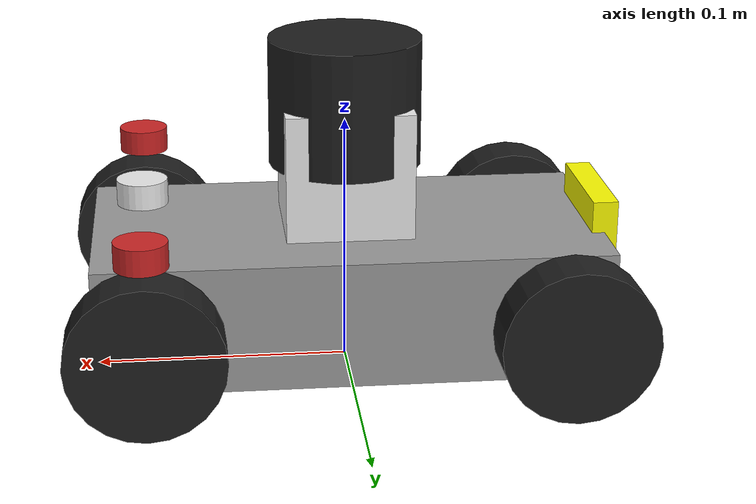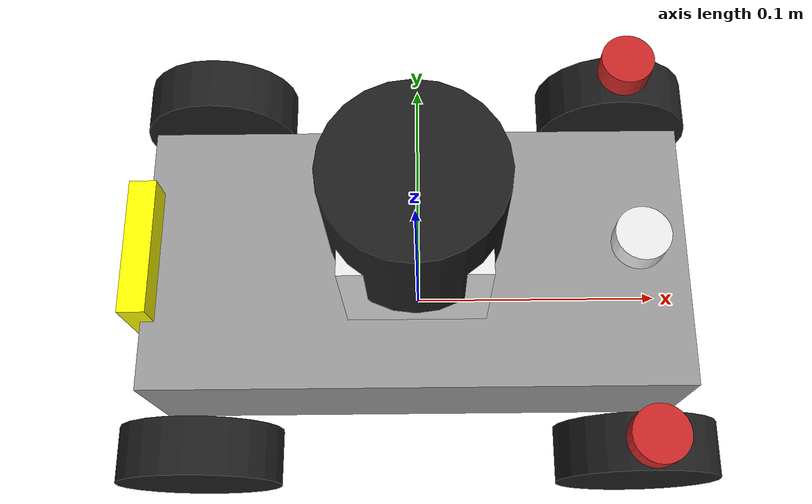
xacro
<!-- 组合小车底盘与摄像头 -->
<robot name="my_car_camera" xmlns:xacro="http://wiki.ros.org/xacro">
    <xacro:include filename="ackermann.urdf.xacro" />
    <xacro:include filename="ackermann_gazebo.urdf.xacro" />
    <xacro:include filename="laser_gazebo.urdf.xacro" />
    <xacro:include filename="laser.urdf.xacro" />
    <xacro:include filename="imu.urdf.xacro" />
</robot>

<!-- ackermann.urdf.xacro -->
<robot name="racebot" xmlns:xacro="http://wiki.ros.org/xacro">
  <!-- Include xacro for inertials, materials and wheels -->
  <xacro:include filename="$(find nav2_bringup)/ackermann_model/steer_base/wheel.xacro" />

  <xacro:property name="M_PI" value="3.1415926535897931" />
  <xacro:arg name="lidar_visual" default="true" />

  <!-- Math constants -->
  <xacro:property name="deg_to_rad" value="0.01745329251994329577" />

  <!-- Robot base dimensions -->
  <xacro:property name="base_length" value="0.2" />
  <xacro:property name="base_width" value="0.1" />
  <xacro:property name="base_height" value="0.05" />
  <xacro:property name="base_mass" value="300" />

  <!-- Wheel link dimensions -->
  <xacro:property name="wheel_radius" value="0.03" />
  <xacro:property name="wheel_thickness" value="0.02" />
  <xacro:property name="wheel_mass" value="30.0" />

  <!-- Steering link dimensions -->
  <xacro:property name="steer_radius" value="0.01" />
  <xacro:property name="steer_thickness" value="0.01" />
  <xacro:property name="steer_mass" value="15" />

  <!-- Axle positions -->
  <xacro:property name="axle_offset" value="0.02" />
  <xacro:property name="steer_offset" value="0.01" />

  <link name="base_footprint" />
  <joint name="base_joint" type="fixed">
    <parent link="base_footprint" />
    <child link="base_link" />
    <origin xyz="0 0 ${base_height/1.5}" rpy="0 0 0" />
  </joint>

  <!-- Base link -->
  <link name="base_link">
    <visual>
      <origin xyz="0 0 0" rpy="0 0 0" />
      <geometry>
        <box size="${base_length} ${base_width} ${base_height}" />
      </geometry>
      <material name="gray" />
    </visual>
    <collision>
      <origin xyz="0 0 0" rpy="0 0 0" />
      <geometry>
        <box size="${base_length/2} ${base_width/2} ${base_height/2}" />
      </geometry>
    </collision>
    <xacro:solid_cuboid_inertial rpy="0 0 0" xyz="0 0 0" mass="${base_mass}" x="${base_length}"
      y="${base_width}" z="${base_height}" />
  </link>

  <!-- Front steer and rear wheel joints required for ackermann_steering_controller -->
  <xacro:front_steer name="front" parent="base" steer_radius="${steer_radius}"
    steer_thickness="${steer_thickness}"
    steer_mass="${steer_mass}" base_length="${base_length}" base_width="${base_width}"
    axle_offset="${axle_offset}"
    steer_height="${wheel_radius+steer_offset}"></xacro:front_steer>

  <!-- Rear Link -->
  <xacro:rear_wheel name="rear" parent="base" wheel_radius="${wheel_radius/4}"
    wheel_thickness="${wheel_thickness/2}" wheel_mass="${wheel_mass/32}">
    <origin xyz="${-base_length/2+axle_offset} 0 0" rpy="${-90 * deg_to_rad} 0 0" />
  </xacro:rear_wheel>

  <!-- Steerable front wheels -->
  <xacro:front_wheel_lr name="front_right" parent="base" reflect="-1" wheel_radius="${wheel_radius}"
    wheel_thickness="${wheel_thickness}"
    wheel_mass="${wheel_mass}" steer_radius="${steer_radius}" steer_thickness="${steer_thickness}"
    steer_mass="${steer_mass}"
    base_length="${base_length}" base_width="${base_width}" axle_offset="${axle_offset}"
    steer_height="${wheel_radius+steer_offset}"></xacro:front_wheel_lr>

  <xacro:front_wheel_lr name="front_left" parent="base" reflect="1" wheel_radius="${wheel_radius}"
    wheel_thickness="${wheel_thickness}"
    wheel_mass="${wheel_mass}" steer_radius="${steer_radius}" steer_thickness="${steer_thickness}"
    steer_mass="${steer_mass}"
    base_length="${base_length}" base_width="${base_width}" axle_offset="${axle_offset}"
    steer_height="${wheel_radius+steer_offset}"></xacro:front_wheel_lr>

  <!-- Rear wheels -->
  <xacro:rear_wheel_lr name="rear_right" parent="base" wheel_radius="${wheel_radius}"
    wheel_thickness="${wheel_thickness}" wheel_mass="${wheel_mass}">
    <origin xyz="${-base_length/2+axle_offset} ${-base_width/2-axle_offset} 0"
      rpy="${-90 * deg_to_rad} 0 0" />
  </xacro:rear_wheel_lr>

  <xacro:rear_wheel_lr name="rear_left" parent="base" wheel_radius="${wheel_radius}"
    wheel_thickness="${wheel_thickness}" wheel_mass="${wheel_mass}">
    <origin xyz="${-base_length/2+axle_offset} ${+base_width/2+axle_offset} 0"
      rpy="${-90 * deg_to_rad} 0 0" />
  </xacro:rear_wheel_lr>

  <!-- Colour -->
  <gazebo reference="base_link">
    <material>Gazebo/Residential</material>
  </gazebo>

  <!-- 虚拟方向盘 -->
  <!-- Virtual Steering wheel -->
  <link name="virtual_steer_link">
    <visual>
      <origin xyz="0.0 0.0 0.0" rpy="0.0 0.0 0.0" />
      <geometry>
        <box size="0.01 0.05 0.075" />
      </geometry>
      <material name="">
        <color rgba="1.0 1.0 0.0 1" />
      </material>
    </visual>
    <inertial>
      <origin xyz="0.0 0.0 0.0" rpy="0.0 0.0 0.0" />
      <mass value="0.001" />
      <inertia ixx="0.0" ixy="0.0" ixz="0.0" iyy="0.0" iyz="0.0" izz="0.0" />
    </inertial>
  </link>
  <joint name="virtual_steering_wheel_joint" type="revolute">
    <origin xyz="${-base_length/2} 0.0 0.0" rpy="0.0 0.0 0.0" />
    <parent link="base_link" />
    <child link="virtual_steer_link" />
    <axis xyz="-1 0 0" />
    <limit lower="-3" upper="3" effort="200" velocity="20" />
  </joint>

</robot>

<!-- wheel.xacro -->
<robot name="wheel" xmlns:xacro="http://wiki.ros.org/xacro">
  <!-- Include xacro for materials and inertials -->
  <xacro:include filename="$(find nav2_bringup)/ackermann_model/steer_base/materials.xacro" />
  <xacro:include filename="$(find nav2_bringup)/ackermann_model/steer_base/inertials.xacro" />

  <!-- Properties -->
  <xacro:property name="steer_effort" value="10.0" />
  <xacro:property name="steer_velocity" value="10.0" />
  <xacro:property name="steer_limit_deg" value="45.0" />
  <xacro:property name="deg_to_rad" value="0.01745329251994329577" />

  <!-- Bicycle model front steering link (required for steer_drive_controller) -->
  <xacro:macro name="front_steer"
    params="
      name
      parent
      steer_radius
      steer_thickness
      steer_mass
      base_length
      base_width
      axle_offset
      steer_height">
    <link name="${name}_steer_link">
      <visual>
        <origin xyz="0 0 0" rpy="0 0 0" />
        <geometry>
          <cylinder radius="${steer_radius}" length="${steer_thickness}" />
        </geometry>
        <material name="white" />
      </visual>
      <collision>
        <origin xyz="0 0 0" rpy="0 0 0" />
        <geometry>
          <cylinder radius="${steer_radius}" length="${steer_thickness}" />
        </geometry>
      </collision>
      <xacro:solid_cylinder_inertial
        rpy="0 0 0" xyz="0 0 0"
        mass="${steer_mass}"
        radius="${steer_radius}" length="${steer_thickness}" />
    </link>

    <joint name="${name}_steer_joint" type="revolute">
      <parent link="${parent}_link" />
      <child link="${name}_steer_link" />
      <origin xyz="${base_length/2-axle_offset} 0 ${steer_height}" rpy="0 0 0" />
      <axis xyz="0 0 1" />
      <limit effort="${steer_effort}"
        lower="${-180.0 * deg_to_rad}" upper="${180.0 * deg_to_rad}"
        velocity="${steer_velocity}" />
    </joint>

    <transmission name="${name}_steer_joint_trans">
      <type>transmission_interface/SimpleTransmission</type>
      <actuator name="${name}_steer_joint_motor">
        <mechanicalReduction>1</mechanicalReduction>
        <hardwareInterface>hardware_interface/PositionJointInterface</hardwareInterface>
      </actuator>
      <joint name="${name}_steer_joint">
        <hardwareInterface>hardware_interface/PositionJointInterface</hardwareInterface>
      </joint>
    </transmission>

    <gazebo reference="${name}_steer_link">
      <material>Gazebo/White</material>
    </gazebo>
  </xacro:macro>

  <!-- Car steering model front (steerable) wheel links (left/right) -->
  <xacro:macro name="front_wheel_lr"
    params="
      name
      parent
      reflect
      wheel_radius
      wheel_thickness
      wheel_mass
      steer_radius
      steer_thickness
      steer_mass
      base_length
      base_width
      axle_offset
      steer_height">
    <link name="${name}_steer_link">
      <visual>
        <origin xyz="0 0 0" rpy="0 0 0" />
        <geometry>
          <cylinder radius="${steer_radius}" length="${steer_thickness}" />
        </geometry>
        <material name="red" />
      </visual>
      <collision>
        <origin xyz="0 0 0" rpy="0 0 0" />
        <geometry>
          <cylinder radius="${steer_radius}" length="${steer_thickness}" />
        </geometry>
      </collision>
      <xacro:solid_cylinder_inertial
        rpy="0 0 0" xyz="0 0 0"
        mass="${steer_mass}"
        radius="${steer_radius}" length="${steer_thickness}" />
    </link>

    <joint name="${name}_steer_joint" type="revolute">
      <parent link="${parent}_link" />
      <child link="${name}_steer_link" />
      <origin
        xyz="${base_length/2-axle_offset} ${reflect*(base_width/2+axle_offset)} ${steer_height}"
        rpy="0 0 0" />
      <axis xyz="0 0 1" />
      <limit effort="${steer_effort}"
        lower="${steer_limit_deg * deg_to_rad * -1.0}" upper="${steer_limit_deg * deg_to_rad}"
        velocity="${steer_velocity}" />
    </joint>

    <link name="${name}_wheel_link">
      <visual>
        <origin xyz="0 0 0" rpy="0 0 0" />
        <geometry>
          <cylinder radius="${wheel_radius}" length="${wheel_thickness}" />
        </geometry>
        <material name="black" />
      </visual>
      <collision>
        <origin xyz="0 0 0" rpy="0 0 0" />
        <geometry>
          <cylinder radius="${wheel_radius}" length="${wheel_thickness}" />
        </geometry>
      </collision>
      <xacro:solid_cylinder_inertial
        rpy="0 0 0" xyz="0 0 0"
        mass="${wheel_mass}"
        radius="${wheel_radius}" length="${wheel_thickness}" />
    </link>

    <joint name="${name}_wheel_joint" type="continuous">
      <parent link="${name}_steer_link" />
      <child link="${name}_wheel_link" />
      <origin xyz="0 0 ${-steer_height}" rpy="${-90 * deg_to_rad} 0 0" />
      <axis xyz="0 0 1" />
    </joint>

    <transmission name="${name}_steer_joint_trans">
      <type>transmission_interface/SimpleTransmission</type>
      <actuator name="${name}_steer_joint_motor">
        <mechanicalReduction>1</mechanicalReduction>
        <hardwareInterface>hardware_interface/PositionJointInterface</hardwareInterface>
      </actuator>
      <joint name="${name}_steer_joint">
        <hardwareInterface>hardware_interface/PositionJointInterface</hardwareInterface>
      </joint>
    </transmission>

    <transmission name="${name}_wheel_joint_trans">
      <type>transmission_interface/SimpleTransmission</type>
      <actuator name="${name}_wheel_joint_motor">
        <mechanicalReduction>1</mechanicalReduction>
        <hardwareInterface>hardware_interface/VelocityJointInterface</hardwareInterface>
      </actuator>
      <joint name="${name}_wheel_joint">
        <hardwareInterface>hardware_interface/VelocityJointInterface</hardwareInterface>
      </joint>
    </transmission>

    <gazebo reference="${name}_steer_link">
      <material>Gazebo/Red</material>
    </gazebo>

    <gazebo reference="${name}_wheel_link">
      <material>Gazebo/Black</material>
    </gazebo>
  </xacro:macro>

  <!-- Bicycle model rear wheel link (required for steer_drive_controller) -->
  <xacro:macro name="rear_wheel"
    params="
      name
      parent
      wheel_radius
      wheel_thickness
      wheel_mass
      *origin">
    <link name="${name}_wheel_link">
      <visual>
        <origin xyz="0 0 0" rpy="0 0 0" />
        <geometry>
          <cylinder radius="${wheel_radius}" length="${wheel_thickness}" />
        </geometry>
        <material name="white" />
      </visual>
      <collision>
        <origin xyz="0 0 0" rpy="0 0 0" />
        <geometry>
          <cylinder radius="${wheel_radius}" length="${wheel_thickness}" />
        </geometry>
      </collision>
      <xacro:solid_cylinder_inertial
        rpy="0 0 0" xyz="0 0 0"
        mass="${wheel_mass}"
        radius="${wheel_radius}" length="${wheel_thickness}" />
    </link>

    <joint name="${name}_wheel_joint" type="continuous">
      <parent link="${parent}_link" />
      <child link="${name}_wheel_link" />
      <xacro:insert_block name="origin" />
      <axis xyz="0 0 1" />
    </joint>

    <transmission name="${name}_wheel_joint_trans">
      <type>transmission_interface/SimpleTransmission</type>
      <actuator name="${name}_wheel_joint_motor">
        <mechanicalReduction>1</mechanicalReduction>
        <hardwareInterface>hardware_interface/VelocityJointInterface</hardwareInterface>
      </actuator>
      <joint name="${name}_wheel_joint">
        <hardwareInterface>hardware_interface/VelocityJointInterface</hardwareInterface>
      </joint>
    </transmission>

    <gazebo reference="${name}_wheel_link">
      <material>Gazebo/White</material>
    </gazebo>
  </xacro:macro>

  <!-- Bicycle model front wheel link (passive - no transmission) -->
  <xacro:macro name="front_wheel"
    params="
      name
      parent
      wheel_radius
      wheel_thickness
      wheel_mass
      *origin">
    <link name="${name}_wheel_link">
      <visual>
        <origin xyz="0 0 0" rpy="0 0 0" />
        <geometry>
          <cylinder radius="${wheel_radius}" length="${wheel_thickness}" />
        </geometry>
        <material name="white" />
      </visual>
      <collision>
        <origin xyz="0 0 0" rpy="0 0 0" />
        <geometry>
          <cylinder radius="${wheel_radius}" length="${wheel_thickness}" />
        </geometry>
      </collision>
      <xacro:solid_cylinder_inertial
        rpy="0 0 0" xyz="0 0 0"
        mass="${wheel_mass}"
        radius="${wheel_radius}" length="${wheel_thickness}" />
    </link>

    <joint name="${name}_wheel_joint" type="continuous">
      <parent link="${parent}_link" />
      <child link="${name}_wheel_link" />
      <xacro:insert_block name="origin" />
      <axis xyz="0 0 1" />
    </joint>

    <gazebo reference="${name}_wheel_link">
      <material>Gazebo/White</material>
    </gazebo>

    <gazebo reference="${name}_wheel_joint">
      <provideFeedback>true</provideFeedback>
    </gazebo>
  </xacro:macro>

  <!-- Car steering model rear wheel links (left/right) -->
  <xacro:macro name="rear_wheel_lr"
    params="
      name
      parent
      wheel_radius
      wheel_thickness
      wheel_mass
      *origin">
    <link name="${name}_wheel_link">
      <visual>
        <origin xyz="0 0 0" rpy="0 0 0" />
        <geometry>
          <cylinder radius="${wheel_radius}" length="${wheel_thickness}" />
        </geometry>
        <material name="black" />
      </visual>
      <collision>
        <origin xyz="0 0 0" rpy="0 0 0" />
        <geometry>
          <cylinder radius="${wheel_radius}" length="${wheel_thickness}" />
        </geometry>
      </collision>
      <xacro:solid_cylinder_inertial
        rpy="0 0 0" xyz="0 0 0"
        mass="${wheel_mass}"
        radius="${wheel_radius}" length="${wheel_thickness}" />
    </link>

    <joint name="${name}_wheel_joint" type="continuous">
      <parent link="${parent}_link" />
      <child link="${name}_wheel_link" />
      <xacro:insert_block name="origin" />
      <axis xyz="0 0 1" />
    </joint>

    <transmission name="${name}_wheel_joint_trans">
      <type>transmission_interface/SimpleTransmission</type>
      <actuator name="${name}_wheel_joint_motor">
        <mechanicalReduction>1</mechanicalReduction>
        <hardwareInterface>hardware_interface/VelocityJointInterface</hardwareInterface>
      </actuator>
      <joint name="${name}_wheel_joint">
        <hardwareInterface>hardware_interface/VelocityJointInterface</hardwareInterface>
      </joint>
    </transmission>

    <gazebo reference="${name}_wheel_link">
      <material>Gazebo/Black</material>
    </gazebo>
  </xacro:macro>
</robot>

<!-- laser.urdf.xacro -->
<!--
    小车底盘添加雷达
-->
<robot name="my_laser" xmlns:xacro="http://wiki.ros.org/xacro">
    <xacro:include filename="$(find nav2_bringup)/ackermann_model/steer_base/inertials.xacro" />

    <!-- 雷达支架 -->
    <xacro:property name="support_length" value="0.05" /> <!-- 支架长度 -->
    <xacro:property name="support_width" value="0.05" /> <!-- 支架宽度 -->
    <xacro:property name="support_height" value="0.05" /> <!-- 支架高度 -->
    <xacro:property name="support_x" value="0.0" /> <!-- 支架安装的x坐标 -->
    <xacro:property name="support_y" value="0.0" /> <!-- 支架安装的y坐标 -->
    <xacro:property name="support_z" value="${0.05 / 2 + support_length / 2}" /> <!--
    支架安装的z坐标:底盘高度 / 2 + 支架高度 / 2  -->

    <xacro:property name="support_m" value="0.02" /> <!-- 支架质量 -->

    <link name="support">
        <visual>
            <geometry>
                <box size="${support_length} ${support_width} ${support_height}" />
            </geometry>
            <origin xyz="0.0 0.0 0.0" rpy="0.0 0.0 0.0" />
        </visual>

        <collision>
            <geometry>
                <box size="${support_length} ${support_width} ${support_height}" />
            </geometry>
            <origin xyz="0.0 0.0 0.0" rpy="0.0 0.0 0.0" />
        </collision>

        <xacro:solid_cuboid_inertial rpy="0 0 0" xyz="0 0 0"
            mass="${support_m}" x="${support_length}" y="${support_width}" z="${support_height}" />
    </link>

    <joint name="support2base_link" type="fixed">
        <parent link="base_link" />
        <child link="support" />
        <origin xyz="${support_x} ${support_y} ${support_z}" />
    </joint>

    <gazebo reference="support">
        <material>Gazebo/White</material>
    </gazebo>

    <!-- 雷达属性 -->
    <xacro:property name="laser_length" value="0.05" /> <!-- 雷达长度 -->
    <xacro:property name="laser_radius" value="0.03" /> <!-- 雷达半径 -->
    <xacro:property name="laser_x" value="0.0" /> <!-- 雷达安装的x坐标 -->
    <xacro:property name="laser_y" value="0.0" /> <!-- 雷达安装的y坐标 -->
    <xacro:property name="laser_z" value="${support_length / 2}" /> <!-- 雷达安装的z坐标:支架高度 / 2 + 雷达高度 / 2  -->

    <xacro:property name="laser_m" value="0.1" /> <!-- 雷达质量 -->

    <!-- 雷达关节以及link -->
    <link name="base_scan">
        <visual>
            <geometry>
                <!-- 圆柱 -->
                <cylinder radius="${laser_radius}" length="${laser_length}" />
            </geometry>
            <origin xyz="0.0 0.0 0.0" rpy="0.0 0.0 0.0" />
        </visual>
        <collision>
            <geometry>
                <!-- 圆柱 -->
                <cylinder radius="${laser_radius}" length="${laser_length}" />
            </geometry>
            <origin xyz="0.0 0.0 0.0" rpy="0.0 0.0 0.0" />
        </collision>
        <xacro:solid_cuboid_inertial rpy="0 0 0" xyz="0 0 0"
            mass="0.001" x="0.001" y="0.001" z="0.001" />
    </link>

    <joint name="laser_base_link" type="fixed">
        <parent link="support" />
        <child link="base_scan" />
        <origin xyz="${laser_x} ${laser_y} ${laser_z}" />
    </joint>
    <gazebo reference="base_scan">
        <material>Gazebo/Black</material>
    </gazebo>
</robot>

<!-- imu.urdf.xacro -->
<robot name="my_imu" xmlns:xacro="http://www.ros.org/wiki/xacro">
    <link name="imu_link">
        <visual>
            <geometry>
                <box size="0.01 0.01 0.01" />
            </geometry>
        </visual>

        <collision>
            <geometry>
                <box size="0.01 0.01 0.01" />
            </geometry>
        </collision>

        <xacro:solid_cuboid_inertial rpy="0 0 0" xyz="0 0 0"
            mass="0.1" x="0.01" y="0.01" z="0.01" />
    </link>

    <joint name="imu_joint" type="fixed">
        <parent link="base_link" />
        <child link="imu_link" />
        <origin xyz="0 0 0.01" />
    </joint>

    <gazebo reference="imu_link">
        <sensor name="imu_sensor" type="imu">
            <plugin filename="libgazebo_ros_imu_sensor.so" name="imu_plugin">
                <ros>
                    <remapping>~/out:=imu</remapping>
                </ros>
                <initial_orientation_as_reference>false</initial_orientation_as_reference>
            </plugin>
            <always_on>true</always_on>
            <update_rate>100</update_rate>
            <visualize>true</visualize>
            <imu>
                <angular_velocity>
                    <x>
                        <noise type="gaussian">
                            <mean>0.0</mean>
                            <stddev>2e-4</stddev>
                            <bias_mean>0.0000075</bias_mean>
                            <bias_stddev>0.0000008</bias_stddev>
                        </noise>
                    </x>
                    <y>
                        <noise type="gaussian">
                            <mean>0.0</mean>
                            <stddev>2e-4</stddev>
                            <bias_mean>0.0000075</bias_mean>
                            <bias_stddev>0.0000008</bias_stddev>
                        </noise>
                    </y>
                    <z>
                        <noise type="gaussian">
                            <mean>0.0</mean>
                            <stddev>2e-4</stddev>
                            <bias_mean>0.0000075</bias_mean>
                            <bias_stddev>0.0000008</bias_stddev>
                        </noise>
                    </z>
                </angular_velocity>
                <linear_acceleration>
                    <x>
                        <noise type="gaussian">
                            <mean>0.0</mean>
                            <stddev>1.7e-2</stddev>
                            <bias_mean>0.1</bias_mean>
                            <bias_stddev>0.001</bias_stddev>
                        </noise>
                    </x>
                    <y>
                        <noise type="gaussian">
                            <mean>0.0</mean>
                            <stddev>1.7e-2</stddev>
                            <bias_mean>0.1</bias_mean>
                            <bias_stddev>0.001</bias_stddev>
                        </noise>
                    </y>
                    <z>
                        <noise type="gaussian">
                            <mean>0.0</mean>
                            <stddev>1.7e-2</stddev>
                            <bias_mean>0.1</bias_mean>
                            <bias_stddev>0.001</bias_stddev>
                        </noise>
                    </z>
                </linear_acceleration>
            </imu>
        </sensor>
    </gazebo>
</robot>
